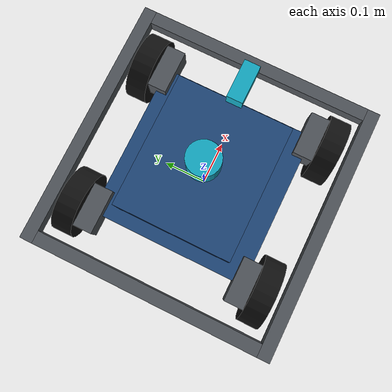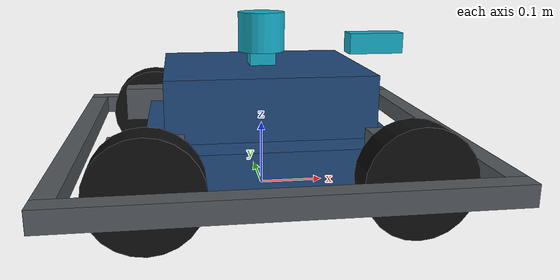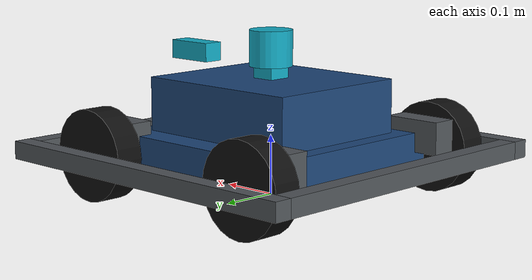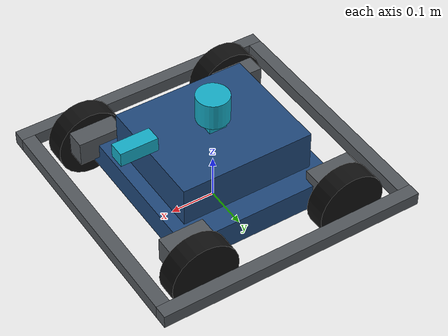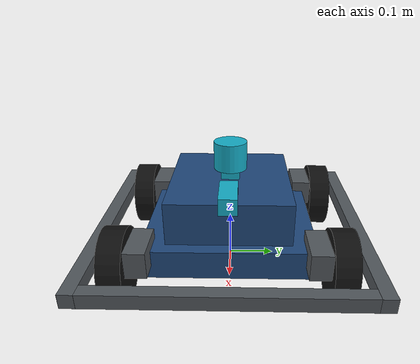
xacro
<?xml version="1.0"?>
<robot xmlns:xacro="http://www.ros.org/wiki/xacro" name="kuruma">
  <!-- STEP mapping: +Z forward -> ROS +X, +X left -> ROS +Y, +Y up -> ROS +Z. -->
  <xacro:property name="wheel_radius" value="0.0763"/><xacro:property name="wheel_width" value="0.0481"/><xacro:property name="wheelbase" value="0.3472"/><xacro:property name="track" value="0.4456"/><xacro:property name="frame_square" value="0.600"/>
  <material name="extrusion"><color rgba="0.32 0.34 0.36 1"/></material><material name="wheel"><color rgba="0.06 0.06 0.06 1"/></material><material name="roller"><color rgba="0.72 0.72 0.70 1"/></material><material name="electronics"><color rgba="0.12 0.28 0.48 1"/></material><material name="provisional"><color rgba="0.08 0.68 0.78 1"/></material>
  <xacro:macro name="box" params="name mass x y z material"><link name="${name}"><inertial><mass value="${mass}"/><inertia ixx="${mass*(y*y+z*z)/12}" iyy="${mass*(x*x+z*z)/12}" izz="${mass*(x*x+y*y)/12}" ixy="0" ixz="0" iyz="0"/></inertial><visual><geometry><box size="${x} ${y} ${z}"/></geometry><material name="${material}"/></visual><collision><geometry><box size="${x} ${y} ${z}"/></geometry></collision></link></xacro:macro>
  <link name="base_footprint"/>
  <!-- Suspension height is provisional; CAD corners differ by about 19 mm vertically. -->
  <xacro:box name="base_link" mass="9.0" x="0.360" y="0.360" z="0.060" material="electronics"/><joint name="base_footprint_joint" type="fixed"><parent link="base_footprint"/><child link="base_link"/><origin xyz="0 0 ${wheel_radius}"/></joint>
  <!-- Measured 3030 extrusion perimeter, 0.600 m square. -->
  <xacro:box name="frame_front" mass="0.8" x="0.600" y="0.030" z="0.030" material="extrusion"/><joint name="frame_front_joint" type="fixed"><parent link="base_link"/><child link="frame_front"/><origin xyz="0 ${frame_square/2-0.015} 0"/></joint>
  <xacro:box name="frame_rear" mass="0.8" x="0.600" y="0.030" z="0.030" material="extrusion"/><joint name="frame_rear_joint" type="fixed"><parent link="base_link"/><child link="frame_rear"/><origin xyz="0 ${-frame_square/2+0.015} 0"/></joint>
  <xacro:box name="frame_left" mass="0.8" x="0.030" y="0.540" z="0.030" material="extrusion"/><joint name="frame_left_joint" type="fixed"><parent link="base_link"/><child link="frame_left"/><origin xyz="${frame_square/2-0.015} 0 0"/></joint>
  <xacro:box name="frame_right" mass="0.8" x="0.030" y="0.540" z="0.030" material="extrusion"/><joint name="frame_right_joint" type="fixed"><parent link="base_link"/><child link="frame_right"/><origin xyz="${-frame_square/2+0.015} 0 0"/></joint>
  <xacro:box name="electronics_envelope" mass="2.0" x="0.300" y="0.260" z="0.100" material="electronics"/><joint name="electronics_envelope_joint" type="fixed"><parent link="base_link"/><child link="electronics_envelope"/><origin xyz="0 0 0.070"/></joint>
  <xacro:macro name="mecanum_wheel" params="name x y roller_sign"><link name="${name}"><inertial><mass value="0.7"/><inertia ixx="0.002" iyy="0.001" izz="0.002" ixy="0" ixz="0" iyz="0"/></inertial><visual name="envelope"><origin rpy="-1.570796 0 0"/><geometry><cylinder radius="${wheel_radius}" length="${wheel_width}"/></geometry><material name="wheel"/></visual><collision name="envelope"><origin rpy="-1.570796 0 0"/><geometry><cylinder radius="${wheel_radius}" length="${wheel_width}"/></geometry></collision><visual name="roller_direction"><origin xyz="0 0 ${wheel_width/2+0.002}" rpy="0 ${roller_sign*0.785398} 0"/><geometry><box size="0.090 0.008 0.008"/></geometry><material name="roller"/></visual></link><joint name="${name}_joint" type="continuous"><parent link="base_link"/><child link="${name}"/><origin xyz="${x} ${y} 0"/><axis xyz="0 1 0"/></joint><xacro:box name="${name}_motor_placeholder" mass="0.35" x="0.100" y="0.055" z="0.055" material="extrusion"/><joint name="${name}_motor_placeholder_joint" type="fixed"><parent link="base_link"/><child link="${name}_motor_placeholder"/><origin xyz="${x} ${y*0.82} 0.025"/></joint></xacro:macro>
  <xacro:mecanum_wheel name="front_left_wheel" x="${wheelbase/2}" y="${track/2}" roller_sign="1"/><xacro:mecanum_wheel name="front_right_wheel" x="${wheelbase/2}" y="${-track/2}" roller_sign="-1"/><xacro:mecanum_wheel name="rear_left_wheel" x="${-wheelbase/2}" y="${track/2}" roller_sign="-1"/><xacro:mecanum_wheel name="rear_right_wheel" x="${-wheelbase/2}" y="${-track/2}" roller_sign="1"/>
  <!-- Provisional navigation mounts: preserved TF seams, not STEP-derived placements. -->
  <xacro:box name="gyro_link" mass="0.05" x="0.040" y="0.040" z="0.020" material="provisional"/><joint name="gyro_joint" type="fixed"><parent link="electronics_envelope"/><child link="gyro_link"/><origin xyz="0 0 0.060"/></joint><xacro:box name="camera_link" mass="0.12" x="0.085" y="0.035" z="0.032" material="provisional"/><joint name="camera_joint" type="fixed"><parent link="electronics_envelope"/><child link="camera_link"/><origin xyz="0.180 0 0.080"/></joint><link name="livox_frame"><visual><geometry><cylinder radius="0.036" length="0.060"/></geometry><material name="provisional"/></visual></link><joint name="livox_joint" type="fixed"><parent link="electronics_envelope"/><child link="livox_frame"/><origin xyz="0 0 0.100"/></joint>
  <!-- Isolated gz_ros2_control profile consumes these standard wheel interfaces. -->
  <ros2_control name="GazeboSimSystem" type="system">
    <hardware><plugin>gz_ros2_control/GazeboSimSystem</plugin></hardware>
    <joint name="front_left_wheel_joint"><command_interface name="velocity"/><state_interface name="position"/><state_interface name="velocity"/></joint>
    <joint name="front_right_wheel_joint"><command_interface name="velocity"/><state_interface name="position"/><state_interface name="velocity"/></joint>
    <joint name="rear_left_wheel_joint"><command_interface name="velocity"/><state_interface name="position"/><state_interface name="velocity"/></joint>
    <joint name="rear_right_wheel_joint"><command_interface name="velocity"/><state_interface name="position"/><state_interface name="velocity"/></joint>
  </ros2_control>
</robot>
